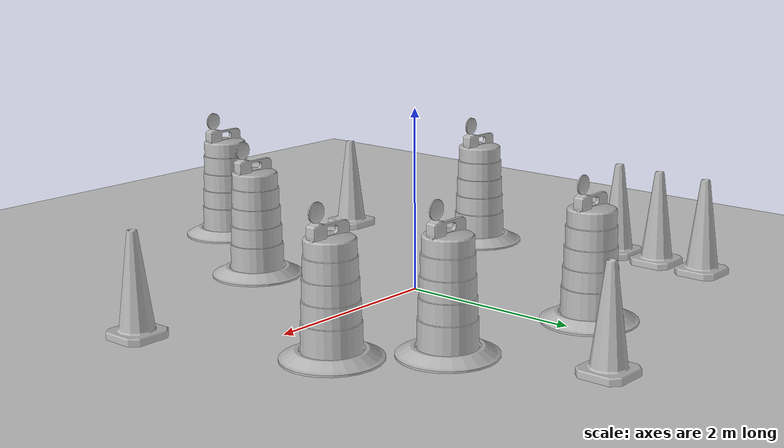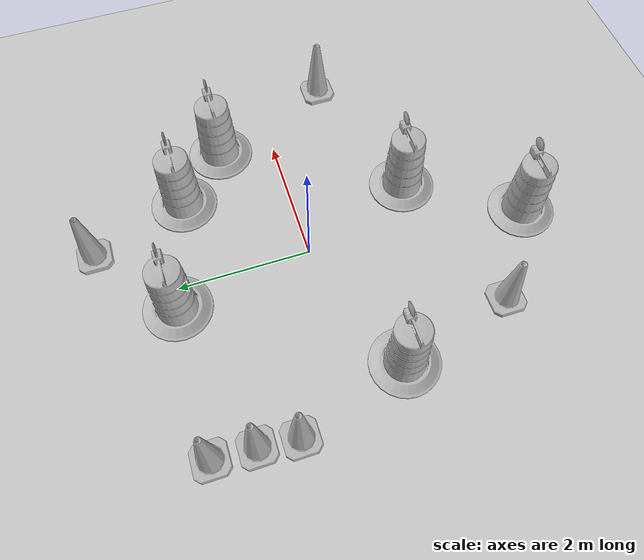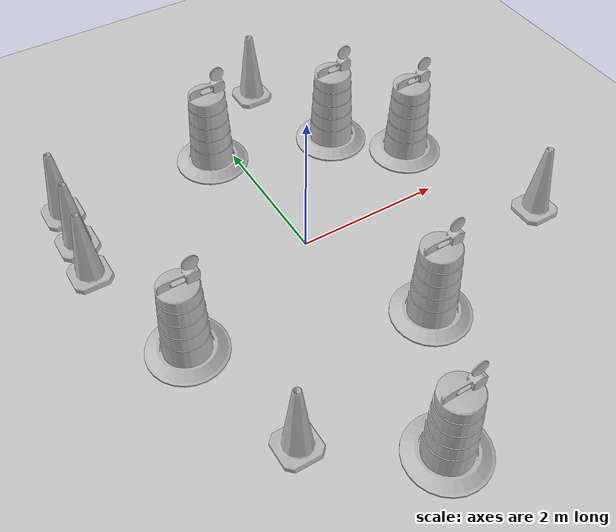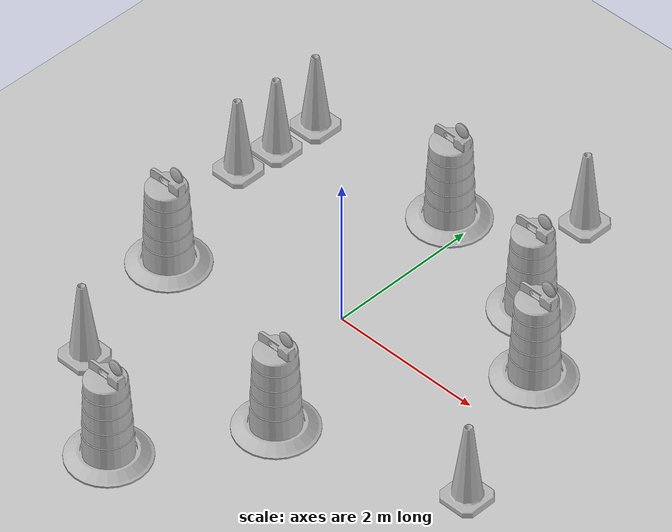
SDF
<sdf version="1.7">
 <world name="default">
  <light name="sun" type="directional">
   <pose>0 0 10 0 -0 0</pose>
   <diffuse>0.8 0.8 0.8 1</diffuse>
   <specular>0.2 0.2 0.2 1</specular>
   <attenuation>
    <range>1000</range>
    <constant>0.9</constant>
    <linear>0.01</linear>
    <quadratic>0.001</quadratic>
   </attenuation>
   <direction>-0.5 0.1 -0.9</direction>
   <spot><inner_angle>0</inner_angle><outer_angle>0</outer_angle><falloff>0</falloff></spot>
  </light>
  <model name="ground_plane">
   <static>1</static>
   <link name="link">
    <collision name="collision">
     <geometry><plane><normal>0 0 1</normal><size>100 100</size></plane></geometry>
     <surface>
      <contact><collide_bitmask>65535</collide_bitmask></contact>
      <friction><ode><mu>100</mu><mu2>50</mu2></ode></friction>
     </surface>
    </collision>
    <visual name="visual">
     <cast_shadows>0</cast_shadows>
     <geometry><plane><normal>0 0 1</normal><size>100 100</size></plane></geometry>
     <material>
      <script><uri>file://media/materials/scripts/gazebo.material</uri><name>Gazebo/Grey</name></script>
     </material>
    </visual>
   </link>
  </model>
  <gravity>0 0 -9.8</gravity>
  <magnetic_field>6e-06 2.3e-05 -4.2e-05</magnetic_field>
  <atmosphere type="adiabatic"/>
  <physics type="ode">
   <max_step_size>0.001</max_step_size>
   <real_time_factor>1</real_time_factor>
   <real_time_update_rate>1000</real_time_update_rate>
  </physics>
  <scene><ambient>0.4 0.4 0.4 1</ambient><background>0.7 0.7 0.7 1</background><shadows>1</shadows></scene>
  <spherical_coordinates>
   <surface_model>EARTH_WGS84</surface_model>
   <latitude_deg>0</latitude_deg>
   <longitude_deg>0</longitude_deg>
   <elevation>0</elevation>
   <heading_deg>0</heading_deg>
  </spherical_coordinates>
  <model name="Construction Barrel">
   <link name="link">
    <inertial>
     <pose>0 0 0.4 0 -0 0</pose>
     <mass>500</mass>
     <inertia><ixx>51.2096</ixx><iyy>51.2096</iyy><izz>25</izz><ixy>0</ixy><ixz>0</ixz><iyz>0</iyz></inertia>
    </inertial>
    <collision name="collision">
     <geometry><mesh><uri>model://construction_barrel/meshes/construction_barrel.dae</uri></mesh></geometry>
    </collision>
    <visual name="visual">
     <geometry><mesh><uri>model://construction_barrel/meshes/construction_barrel.dae</uri></mesh></geometry>
    </visual>
   </link>
   <pose>0.707411 -1.74805 -0 0 0 -2.1e-05</pose>
  </model>
  <model name="Construction Barrel_0">
   <link name="link">
    <inertial>
     <pose>0 0 0.4 0 -0 0</pose>
     <mass>500</mass>
     <inertia><ixx>51.2096</ixx><iyy>51.2096</iyy><izz>25</izz><ixy>0</ixy><ixz>0</ixz><iyz>0</iyz></inertia>
    </inertial>
    <collision name="collision">
     <geometry><mesh><uri>model://construction_barrel/meshes/construction_barrel.dae</uri></mesh></geometry>
    </collision>
    <visual name="visual">
     <geometry><mesh><uri>model://construction_barrel/meshes/construction_barrel.dae</uri></mesh></geometry>
    </visual>
   </link>
   <pose>-0.299161 2.06897 -3e-06 6e-06 1.1e-05 -2.4e-05</pose>
  </model>
  <model name="Construction Barrel_1">
   <link name="link">
    <inertial>
     <pose>0 0 0.4 0 -0 0</pose>
     <mass>500</mass>
     <inertia><ixx>51.2096</ixx><iyy>51.2096</iyy><izz>25</izz><ixy>0</ixy><ixz>0</ixz><iyz>0</iyz></inertia>
    </inertial>
    <collision name="collision">
     <geometry><mesh><uri>model://construction_barrel/meshes/construction_barrel.dae</uri></mesh></geometry>
    </collision>
    <visual name="visual">
     <geometry><mesh><uri>model://construction_barrel/meshes/construction_barrel.dae</uri></mesh></geometry>
    </visual>
   </link>
   <pose>2.18736 0.8367 -2e-06 1e-06 8e-06 -1.1e-05</pose>
  </model>
  <model name="Construction Barrel_2">
   <link name="link">
    <inertial>
     <pose>0 0 0.4 0 -0 0</pose>
     <mass>500</mass>
     <inertia><ixx>51.2096</ixx><iyy>51.2096</iyy><izz>25</izz><ixy>0</ixy><ixz>0</ixz><iyz>0</iyz></inertia>
    </inertial>
    <collision name="collision">
     <geometry><mesh><uri>model://construction_barrel/meshes/construction_barrel.dae</uri></mesh></geometry>
    </collision>
    <visual name="visual">
     <geometry><mesh><uri>model://construction_barrel/meshes/construction_barrel.dae</uri></mesh></geometry>
    </visual>
   </link>
   <pose>1.41054 1.60859 -2e-06 -7e-06 4e-06 -1.8e-05</pose>
  </model>
  <model name="Construction Barrel_3">
   <link name="link">
    <inertial>
     <pose>0 0 0.4 0 -0 0</pose>
     <mass>500</mass>
     <inertia><ixx>51.2096</ixx><iyy>51.2096</iyy><izz>25</izz><ixy>0</ixy><ixz>0</ixz><iyz>0</iyz></inertia>
    </inertial>
    <collision name="collision">
     <geometry><mesh><uri>model://construction_barrel/meshes/construction_barrel.dae</uri></mesh></geometry>
    </collision>
    <visual name="visual">
     <geometry><mesh><uri>model://construction_barrel/meshes/construction_barrel.dae</uri></mesh></geometry>
    </visual>
   </link>
   <pose>-2.05594 -0.728154 -1e-06 -8e-06 -2e-06 -7e-06</pose>
  </model>
  <model name="Construction Cone">
   <link name="link">
    <collision name="collision">
     <geometry>
      <mesh><scale>10 10 10</scale><uri>model://construction_cone/meshes/construction_cone.dae</uri></mesh>
     </geometry>
    </collision>
    <visual name="visual">
     <geometry>
      <mesh><scale>10 10 10</scale><uri>model://construction_cone/meshes/construction_cone.dae</uri></mesh>
     </geometry>
    </visual>
    <inertial>
     <inertia><ixx>1</ixx><ixy>0</ixy><ixz>0</ixz><iyy>1</iyy><iyz>0</iyz><izz>1</izz></inertia>
     <mass>1</mass>
    </inertial>
   </link>
   <pose>-2.60452 0.928832 -0 -0 -0 -0</pose>
  </model>
  <model name="Construction Cone_0">
   <link name="link">
    <collision name="collision">
     <geometry>
      <mesh><scale>10 10 10</scale><uri>model://construction_cone/meshes/construction_cone.dae</uri></mesh>
     </geometry>
    </collision>
    <visual name="visual">
     <geometry>
      <mesh><scale>10 10 10</scale><uri>model://construction_cone/meshes/construction_cone.dae</uri></mesh>
     </geometry>
    </visual>
    <inertial>
     <inertia><ixx>1</ixx><ixy>0</ixy><ixz>0</ixz><iyy>1</iyy><iyz>0</iyz><izz>1</izz></inertia>
     <mass>1</mass>
    </inertial>
   </link>
   <pose>-2.54965 1.50259 -0 0 -0 0</pose>
  </model>
  <model name="Construction Cone_1">
   <link name="link">
    <collision name="collision">
     <geometry>
      <mesh><scale>10 10 10</scale><uri>model://construction_cone/meshes/construction_cone.dae</uri></mesh>
     </geometry>
    </collision>
    <visual name="visual">
     <geometry>
      <mesh><scale>10 10 10</scale><uri>model://construction_cone/meshes/construction_cone.dae</uri></mesh>
     </geometry>
    </visual>
    <inertial>
     <inertia><ixx>1</ixx><ixy>0</ixy><ixz>0</ixz><iyy>1</iyy><iyz>0</iyz><izz>1</izz></inertia>
     <mass>1</mass>
    </inertial>
   </link>
   <pose>-2.518 2.11451 -0 0 -0 0</pose>
  </model>
  <model name="Construction Cone_2">
   <link name="link">
    <collision name="collision">
     <geometry>
      <mesh><scale>10 10 10</scale><uri>model://construction_cone/meshes/construction_cone.dae</uri></mesh>
     </geometry>
    </collision>
    <visual name="visual">
     <geometry>
      <mesh><scale>10 10 10</scale><uri>model://construction_cone/meshes/construction_cone.dae</uri></mesh>
     </geometry>
    </visual>
    <inertial>
     <inertia><ixx>1</ixx><ixy>0</ixy><ixz>0</ixz><iyy>1</iyy><iyz>0</iyz><izz>1</izz></inertia>
     <mass>1</mass>
    </inertial>
   </link>
   <pose>-1.60963 -2.46533 -0 0 -1e-06 0</pose>
  </model>
  <model name="Construction Cone_3">
   <link name="link">
    <collision name="collision">
     <geometry>
      <mesh><scale>10 10 10</scale><uri>model://construction_cone/meshes/construction_cone.dae</uri></mesh>
     </geometry>
    </collision>
    <visual name="visual">
     <geometry>
      <mesh><scale>10 10 10</scale><uri>model://construction_cone/meshes/construction_cone.dae</uri></mesh>
     </geometry>
    </visual>
    <inertial>
     <inertia><ixx>1</ixx><ixy>0</ixy><ixz>0</ixz><iyy>1</iyy><iyz>0</iyz><izz>1</izz></inertia>
     <mass>1</mass>
    </inertial>
   </link>
   <pose>2.96357 -1.06407 -0 0 -1e-06 0</pose>
  </model>
  <model name="Construction Barrel_4">
   <link name="link">
    <inertial>
     <pose>0 0 0.4 0 -0 0</pose>
     <mass>500</mass>
     <inertia><ixx>51.2096</ixx><iyy>51.2096</iyy><izz>25</izz><ixy>0</ixy><ixz>0</ixz><iyz>0</iyz></inertia>
    </inertial>
    <collision name="collision">
     <geometry><mesh><uri>model://construction_barrel/meshes/construction_barrel.dae</uri></mesh></geometry>
    </collision>
    <visual name="visual">
     <geometry><mesh><uri>model://construction_barrel/meshes/construction_barrel.dae</uri></mesh></geometry>
    </visual>
   </link>
   <pose>-0.287198 -3.34885 -0 0 0 -6e-06</pose>
  </model>
  <model name="Construction Cone_4">
   <link name="link">
    <collision name="collision">
     <geometry>
      <mesh><scale>10 10 10</scale><uri>model://construction_cone/meshes/construction_cone.dae</uri></mesh>
     </geometry>
    </collision>
    <visual name="visual">
     <geometry>
      <mesh><scale>10 10 10</scale><uri>model://construction_cone/meshes/construction_cone.dae</uri></mesh>
     </geometry>
    </visual>
    <inertial>
     <inertia><ixx>1</ixx><ixy>0</ixy><ixz>0</ixz><iyy>1</iyy><iyz>0</iyz><izz>1</izz></inertia>
     <mass>1</mass>
    </inertial>
   </link>
   <pose>0.892578 3.07344 -0 0 -1e-06 0</pose>
  </model>
 </world>
</sdf>
